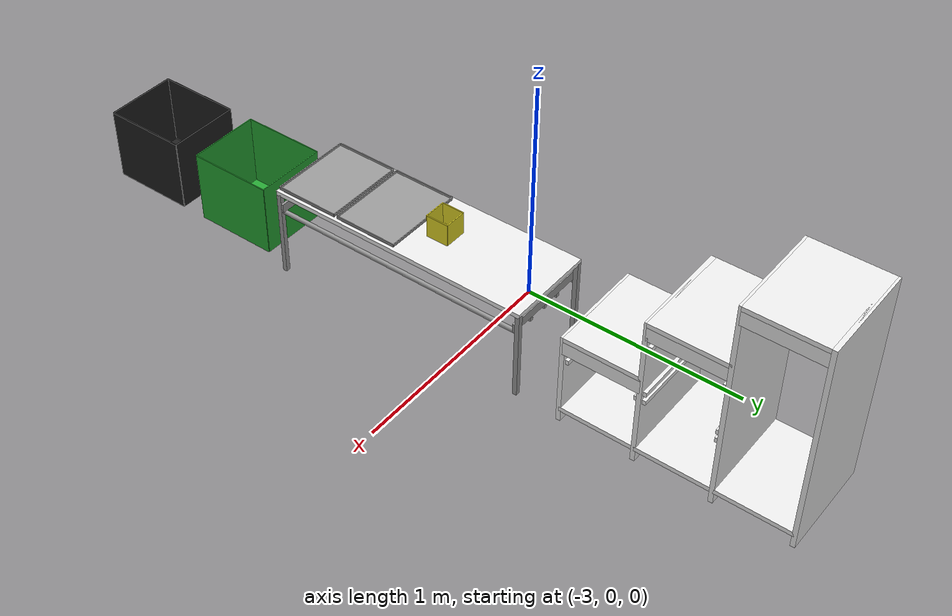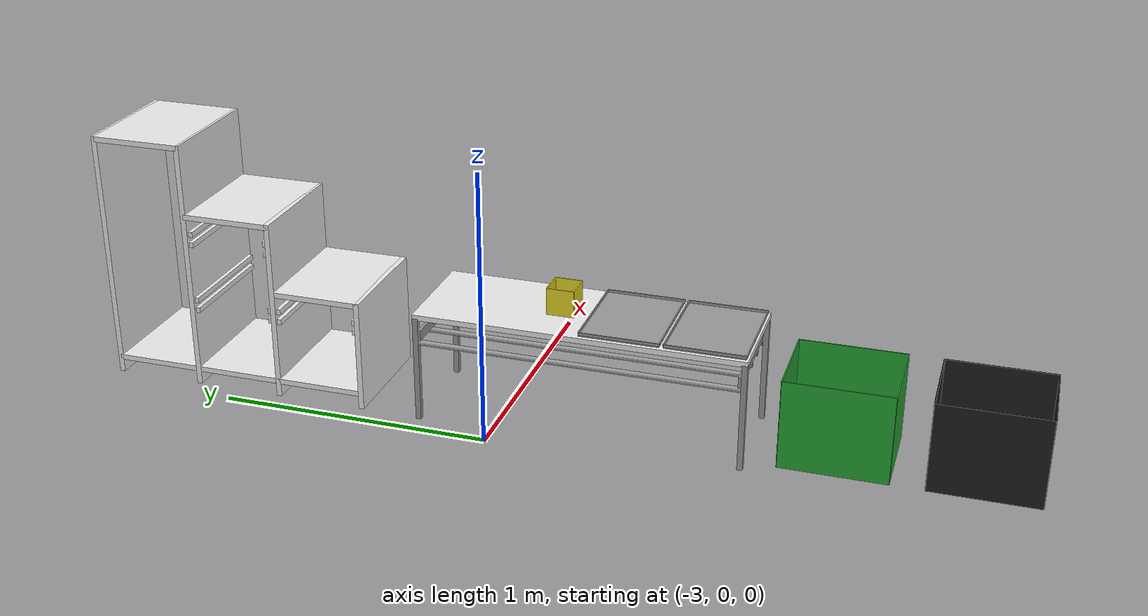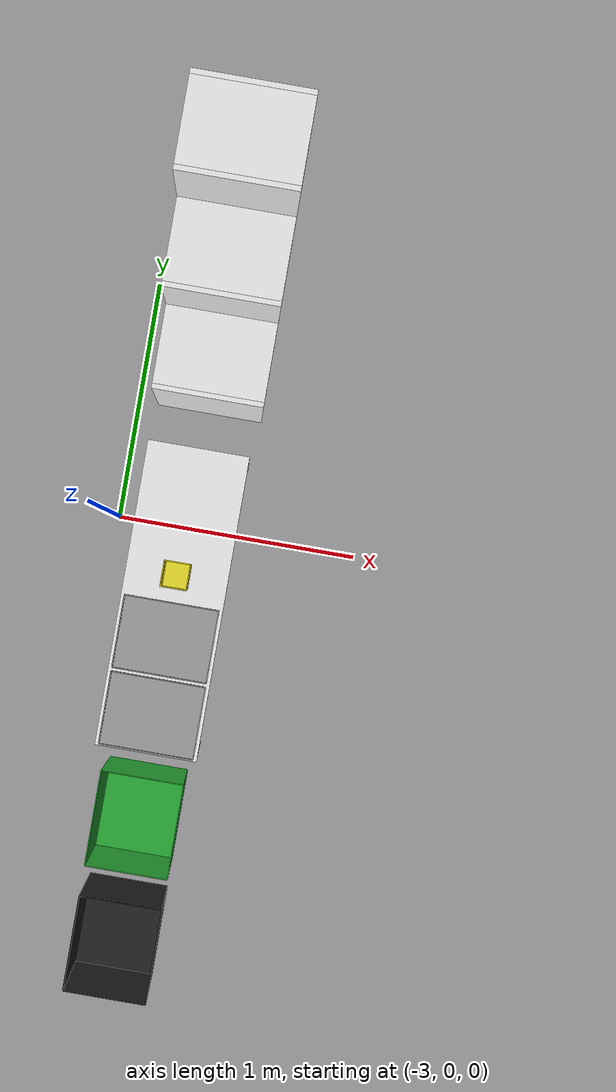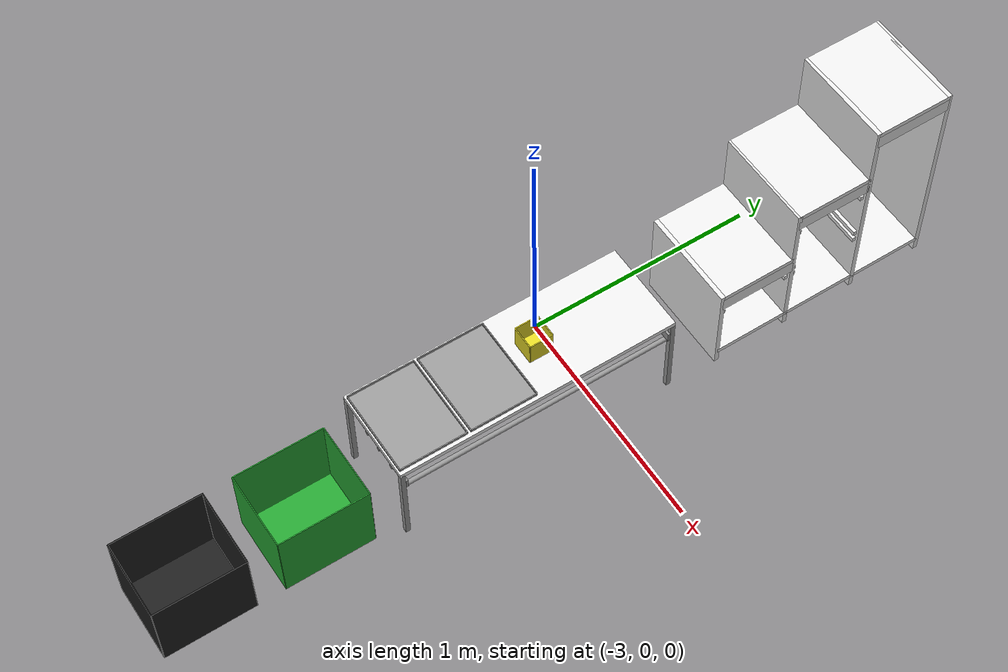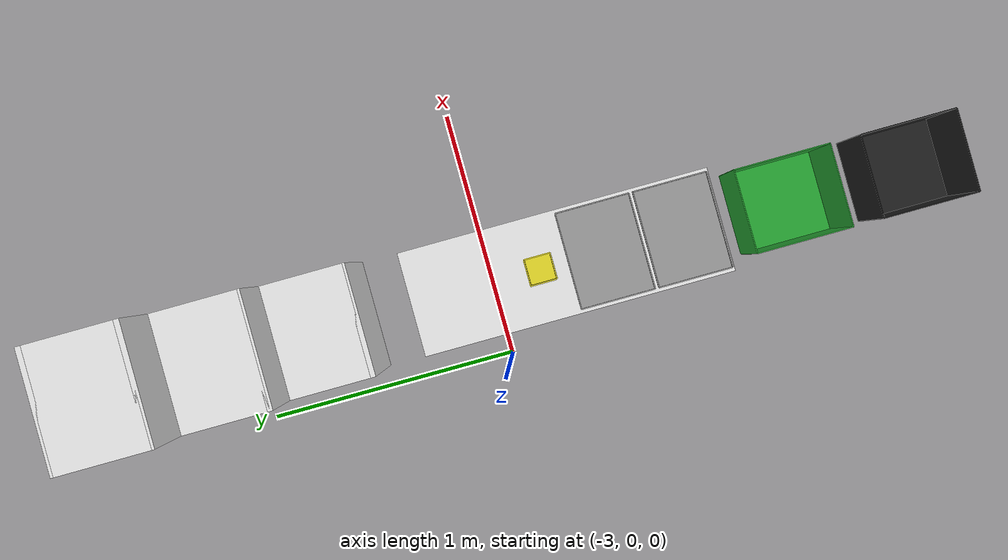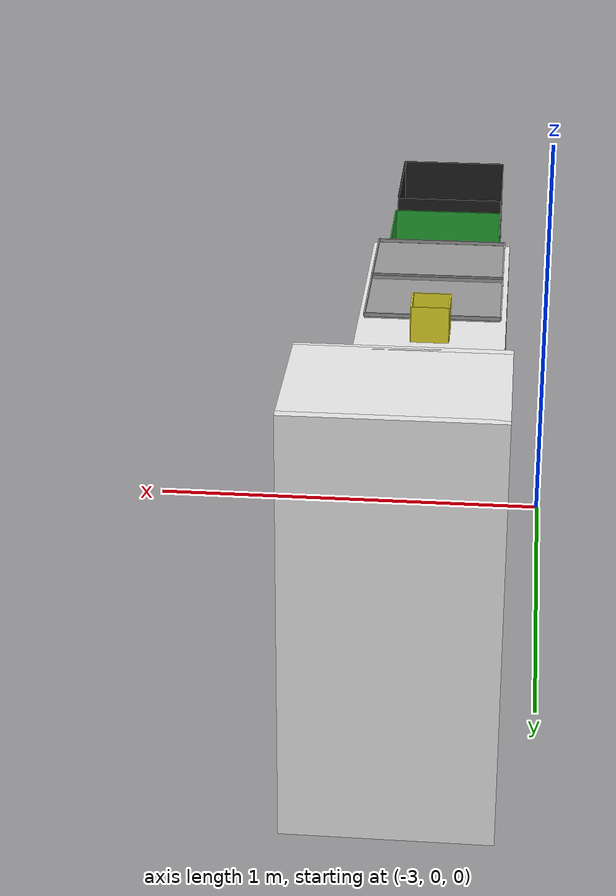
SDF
<sdf version="1.6">
 <world name="default">
  <model name="wrc_bin_black">
   <static>1</static>
   <link name="link">
    <inertial><mass>1</mass></inertial>
    <collision name="bottom">
     <pose>0 0 0.002 0 -0 0</pose>
     <geometry><box><size>0.33 0.38 0.004</size></box></geometry>
    </collision>
    <visual name="bottom_v">
     <pose>0 0 0.002 0 -0 0</pose>
     <geometry><box><size>0.33 0.38 0.004</size></box></geometry>
     <material>
      <script><uri>file://media/materials/scripts/gazebo.material</uri><name>Gazebo/Black</name></script>
     </material>
    </visual>
    <collision name="front">
     <pose>0 0.19 0.165 0 -0 0</pose>
     <geometry><box><size>0.33 0.004 0.33</size></box></geometry>
    </collision>
    <visual name="front_v">
     <pose>0 0.19 0.165 0 -0 0</pose>
     <geometry><box><size>0.33 0.004 0.33</size></box></geometry>
     <material>
      <script><uri>file://media/materials/scripts/gazebo.material</uri><name>Gazebo/Black</name></script>
     </material>
    </visual>
    <collision name="back">
     <pose>0 -0.19 0.165 0 -0 0</pose>
     <geometry><box><size>0.33 0.004 0.33</size></box></geometry>
    </collision>
    <visual name="back_v">
     <pose>0 -0.19 0.165 0 -0 0</pose>
     <geometry><box><size>0.33 0.004 0.33</size></box></geometry>
     <material>
      <script><uri>file://media/materials/scripts/gazebo.material</uri><name>Gazebo/Black</name></script>
     </material>
    </visual>
    <collision name="left">
     <pose>0.165 0 0.165 0 -0 0</pose>
     <geometry><box><size>0.004 0.38 0.33</size></box></geometry>
    </collision>
    <visual name="left_v">
     <pose>0.165 0 0.165 0 -0 0</pose>
     <geometry><box><size>0.004 0.38 0.33</size></box></geometry>
     <material>
      <script><uri>file://media/materials/scripts/gazebo.material</uri><name>Gazebo/Black</name></script>
     </material>
    </visual>
    <collision name="right">
     <pose>-0.165 0 0.165 0 -0 0</pose>
     <geometry><box><size>0.004 0.38 0.33</size></box></geometry>
    </collision>
    <visual name="right_v">
     <pose>-0.165 0 0.165 0 -0 0</pose>
     <geometry><box><size>0.004 0.38 0.33</size></box></geometry>
     <material>
      <script><uri>file://media/materials/scripts/gazebo.material</uri><name>Gazebo/Black</name></script>
     </material>
    </visual>
   </link>
   <pose>-2.7 -1.7 0 0 -0 0</pose>
  </model>
  <model name="wrc_bin_green">
   <static>1</static>
   <link name="link">
    <inertial><mass>1</mass></inertial>
    <collision name="bottom">
     <pose>0 0 0.002 0 -0 0</pose>
     <geometry><box><size>0.33 0.38 0.004</size></box></geometry>
    </collision>
    <visual name="bottom_v">
     <pose>0 0 0.002 0 -0 0</pose>
     <geometry><box><size>0.33 0.38 0.004</size></box></geometry>
     <material>
      <script><uri>file://media/materials/scripts/gazebo.material</uri><name>Gazebo/Green</name></script>
     </material>
    </visual>
    <collision name="front">
     <pose>0 0.19 0.165 0 -0 0</pose>
     <geometry><box><size>0.33 0.004 0.33</size></box></geometry>
    </collision>
    <visual name="front_v">
     <pose>0 0.19 0.165 0 -0 0</pose>
     <geometry><box><size>0.33 0.004 0.33</size></box></geometry>
     <material>
      <script><uri>file://media/materials/scripts/gazebo.material</uri><name>Gazebo/Green</name></script>
     </material>
    </visual>
    <collision name="back">
     <pose>0 -0.19 0.165 0 -0 0</pose>
     <geometry><box><size>0.33 0.004 0.33</size></box></geometry>
    </collision>
    <visual name="back_v">
     <pose>0 -0.19 0.165 0 -0 0</pose>
     <geometry><box><size>0.33 0.004 0.33</size></box></geometry>
     <material>
      <script><uri>file://media/materials/scripts/gazebo.material</uri><name>Gazebo/Green</name></script>
     </material>
    </visual>
    <collision name="left">
     <pose>0.165 0 0.165 0 -0 0</pose>
     <geometry><box><size>0.004 0.38 0.33</size></box></geometry>
    </collision>
    <visual name="left_v">
     <pose>0.165 0 0.165 0 -0 0</pose>
     <geometry><box><size>0.004 0.38 0.33</size></box></geometry>
     <material>
      <script><uri>file://media/materials/scripts/gazebo.material</uri><name>Gazebo/Green</name></script>
     </material>
    </visual>
    <collision name="right">
     <pose>-0.165 0 0.165 0 -0 0</pose>
     <geometry><box><size>0.004 0.38 0.33</size></box></geometry>
    </collision>
    <visual name="right_v">
     <pose>-0.165 0 0.165 0 -0 0</pose>
     <geometry><box><size>0.004 0.38 0.33</size></box></geometry>
     <material>
      <script><uri>file://media/materials/scripts/gazebo.material</uri><name>Gazebo/Green</name></script>
     </material>
    </visual>
   </link>
   <pose>-2.7 -1.2 0 0 -0 0</pose>
  </model>
  <model name="wrc_stair_like_drawer">
   <static>1</static>
   <link name="link">
    <inertial><mass>1</mass></inertial>
    <collision name="slit1">
     <pose>0 -0.495 0.21 0 -0 0</pose>
     <geometry><box><size>0.44 0.02 0.42</size></box></geometry>
    </collision>
    <visual name="slit1_v">
     <pose>0 -0.495 0.21 0 -0 0</pose>
     <geometry><box><size>0.44 0.02 0.42</size></box></geometry>
     <material>
      <script><uri>file://media/materials/scripts/gazebo.material</uri><name>Gazebo/White</name></script>
     </material>
    </visual>
    <collision name="holder_slit1_1_left_low">
     <pose>0 -0.48 0.3 0 -0 0</pose>
     <geometry><box><size>0.42 0.02 0.02</size></box></geometry>
    </collision>
    <visual name="holder_slit1_1_left_low_v">
     <pose>0 -0.48 0.3 0 -0 0</pose>
     <geometry><box><size>0.42 0.02 0.02</size></box></geometry>
     <material>
      <script><uri>file://media/materials/scripts/gazebo.material</uri><name>Gazebo/White</name></script>
     </material>
    </visual>
    <collision name="holder_slit1_1_left_high">
     <pose>0 -0.48 0.34 0 -0 0</pose>
     <geometry><box><size>0.42 0.02 0.02</size></box></geometry>
    </collision>
    <visual name="holder_slit1_1_left_high_v">
     <pose>0 -0.48 0.34 0 -0 0</pose>
     <geometry><box><size>0.42 0.02 0.02</size></box></geometry>
     <material>
      <script><uri>file://media/materials/scripts/gazebo.material</uri><name>Gazebo/White</name></script>
     </material>
    </visual>
    <collision name="holder_slit1_1_right_low">
     <pose>0 -0.18 0.3 0 -0 0</pose>
     <geometry><box><size>0.42 0.02 0.02</size></box></geometry>
    </collision>
    <visual name="holder_slit1_1_right_low_v">
     <pose>0 -0.18 0.3 0 -0 0</pose>
     <geometry><box><size>0.42 0.02 0.02</size></box></geometry>
     <material>
      <script><uri>file://media/materials/scripts/gazebo.material</uri><name>Gazebo/White</name></script>
     </material>
    </visual>
    <collision name="holder_slit1_1_right_high">
     <pose>0 -0.18 0.34 0 -0 0</pose>
     <geometry><box><size>0.42 0.02 0.02</size></box></geometry>
    </collision>
    <visual name="holder_slit1_1_right_high_v">
     <pose>0 -0.18 0.34 0 -0 0</pose>
     <geometry><box><size>0.42 0.02 0.02</size></box></geometry>
     <material>
      <script><uri>file://media/materials/scripts/gazebo.material</uri><name>Gazebo/White</name></script>
     </material>
    </visual>
    <collision name="slit2">
     <pose>0 -0.165 0.34 0 -0 0</pose>
     <geometry><box><size>0.44 0.02 0.68</size></box></geometry>
    </collision>
    <visual name="slit2_v">
     <pose>0 -0.165 0.34 0 -0 0</pose>
     <geometry><box><size>0.44 0.02 0.68</size></box></geometry>
     <material>
      <script><uri>file://media/materials/scripts/gazebo.material</uri><name>Gazebo/White</name></script>
     </material>
    </visual>
    <collision name="holder_slit2_1_left_low">
     <pose>0 -0.15 0.3 0 -0 0</pose>
     <geometry><box><size>0.42 0.02 0.02</size></box></geometry>
    </collision>
    <visual name="holder_slit2_1_left_low_v">
     <pose>0 -0.15 0.3 0 -0 0</pose>
     <geometry><box><size>0.42 0.02 0.02</size></box></geometry>
     <material>
      <script><uri>file://media/materials/scripts/gazebo.material</uri><name>Gazebo/White</name></script>
     </material>
    </visual>
    <collision name="holder_slit2_1_left_high">
     <pose>0 -0.15 0.34 0 -0 0</pose>
     <geometry><box><size>0.42 0.02 0.02</size></box></geometry>
    </collision>
    <visual name="holder_slit2_1_left_high_v">
     <pose>0 -0.15 0.34 0 -0 0</pose>
     <geometry><box><size>0.42 0.02 0.02</size></box></geometry>
     <material>
      <script><uri>file://media/materials/scripts/gazebo.material</uri><name>Gazebo/White</name></script>
     </material>
    </visual>
    <collision name="holder_slit2_1_right_low">
     <pose>0 0.15 0.3 0 -0 0</pose>
     <geometry><box><size>0.42 0.02 0.02</size></box></geometry>
    </collision>
    <visual name="holder_slit2_1_right_low_v">
     <pose>0 0.15 0.3 0 -0 0</pose>
     <geometry><box><size>0.42 0.02 0.02</size></box></geometry>
     <material>
      <script><uri>file://media/materials/scripts/gazebo.material</uri><name>Gazebo/White</name></script>
     </material>
    </visual>
    <collision name="holder_slit2_1_right_high">
     <pose>0 0.15 0.34 0 -0 0</pose>
     <geometry><box><size>0.42 0.02 0.02</size></box></geometry>
    </collision>
    <visual name="holder_slit2_1_right_high_v">
     <pose>0 0.15 0.34 0 -0 0</pose>
     <geometry><box><size>0.42 0.02 0.02</size></box></geometry>
     <material>
      <script><uri>file://media/materials/scripts/gazebo.material</uri><name>Gazebo/White</name></script>
     </material>
    </visual>
    <collision name="holder_slit2_2_left_low">
     <pose>0 -0.15 0.56 0 -0 0</pose>
     <geometry><box><size>0.42 0.02 0.02</size></box></geometry>
    </collision>
    <visual name="holder_slit2_2_left_low_v">
     <pose>0 -0.15 0.56 0 -0 0</pose>
     <geometry><box><size>0.42 0.02 0.02</size></box></geometry>
     <material>
      <script><uri>file://media/materials/scripts/gazebo.material</uri><name>Gazebo/White</name></script>
     </material>
    </visual>
    <collision name="holder_slit2_2_left_high">
     <pose>0 -0.15 0.6 0 -0 0</pose>
     <geometry><box><size>0.42 0.02 0.02</size></box></geometry>
    </collision>
    <visual name="holder_slit2_2_left_high_v">
     <pose>0 -0.15 0.6 0 -0 0</pose>
     <geometry><box><size>0.42 0.02 0.02</size></box></geometry>
     <material>
      <script><uri>file://media/materials/scripts/gazebo.material</uri><name>Gazebo/White</name></script>
     </material>
    </visual>
    <collision name="holder_slit2_2_right_low">
     <pose>0 0.15 0.56 0 -0 0</pose>
     <geometry><box><size>0.42 0.02 0.02</size></box></geometry>
    </collision>
    <visual name="holder_slit2_2_right_low_v">
     <pose>0 0.15 0.56 0 -0 0</pose>
     <geometry><box><size>0.42 0.02 0.02</size></box></geometry>
     <material>
      <script><uri>file://media/materials/scripts/gazebo.material</uri><name>Gazebo/White</name></script>
     </material>
    </visual>
    <collision name="holder_slit2_2_right_high">
     <pose>0 0.15 0.6 0 -0 0</pose>
     <geometry><box><size>0.42 0.02 0.02</size></box></geometry>
    </collision>
    <visual name="holder_slit2_2_right_high_v">
     <pose>0 0.15 0.6 0 -0 0</pose>
     <geometry><box><size>0.42 0.02 0.02</size></box></geometry>
     <material>
      <script><uri>file://media/materials/scripts/gazebo.material</uri><name>Gazebo/White</name></script>
     </material>
    </visual>
    <collision name="slit3">
     <pose>0 0.165 0.47 0 -0 0</pose>
     <geometry><box><size>0.44 0.02 0.94</size></box></geometry>
    </collision>
    <visual name="slit3_v">
     <pose>0 0.165 0.47 0 -0 0</pose>
     <geometry><box><size>0.44 0.02 0.94</size></box></geometry>
     <material>
      <script><uri>file://media/materials/scripts/gazebo.material</uri><name>Gazebo/White</name></script>
     </material>
    </visual>
    <collision name="slit4">
     <pose>0 0.495 0.47 0 -0 0</pose>
     <geometry><box><size>0.44 0.02 0.94</size></box></geometry>
    </collision>
    <visual name="slit4_v">
     <pose>0 0.495 0.47 0 -0 0</pose>
     <geometry><box><size>0.44 0.02 0.94</size></box></geometry>
     <material>
      <script><uri>file://media/materials/scripts/gazebo.material</uri><name>Gazebo/White</name></script>
     </material>
    </visual>
    <collision name="top1">
     <pose>0 -0.33 0.41 0 -0 0</pose>
     <geometry><box><size>0.44 0.33 0.02</size></box></geometry>
    </collision>
    <visual name="top1_v">
     <pose>0 -0.33 0.41 0 -0 0</pose>
     <geometry><box><size>0.44 0.33 0.02</size></box></geometry>
     <material>
      <script><uri>file://media/materials/scripts/gazebo.material</uri><name>Gazebo/White</name></script>
     </material>
    </visual>
    <collision name="top1_front">
     <pose>0.21 -0.33 0.37 0 -0 0</pose>
     <geometry><box><size>0.02 0.33 0.06</size></box></geometry>
    </collision>
    <visual name="top1_front_v">
     <pose>0.21 -0.33 0.37 0 -0 0</pose>
     <geometry><box><size>0.02 0.33 0.06</size></box></geometry>
     <material>
      <script><uri>file://media/materials/scripts/gazebo.material</uri><name>Gazebo/White</name></script>
     </material>
    </visual>
    <collision name="top2">
     <pose>0 0 0.67 0 -0 0</pose>
     <geometry><box><size>0.44 0.33 0.02</size></box></geometry>
    </collision>
    <visual name="top2_v">
     <pose>0 0 0.67 0 -0 0</pose>
     <geometry><box><size>0.44 0.33 0.02</size></box></geometry>
     <material>
      <script><uri>file://media/materials/scripts/gazebo.material</uri><name>Gazebo/White</name></script>
     </material>
    </visual>
    <collision name="top2_front">
     <pose>0.21 0 0.63 0 -0 0</pose>
     <geometry><box><size>0.02 0.33 0.06</size></box></geometry>
    </collision>
    <visual name="top2_front_v">
     <pose>0.21 0 0.63 0 -0 0</pose>
     <geometry><box><size>0.02 0.33 0.06</size></box></geometry>
     <material>
      <script><uri>file://media/materials/scripts/gazebo.material</uri><name>Gazebo/White</name></script>
     </material>
    </visual>
    <collision name="top3">
     <pose>0 0.33 0.93 0 -0 0</pose>
     <geometry><box><size>0.44 0.33 0.02</size></box></geometry>
    </collision>
    <visual name="top3_v">
     <pose>0 0.33 0.93 0 -0 0</pose>
     <geometry><box><size>0.44 0.33 0.02</size></box></geometry>
     <material>
      <script><uri>file://media/materials/scripts/gazebo.material</uri><name>Gazebo/White</name></script>
     </material>
    </visual>
    <collision name="top3_front">
     <pose>0.21 0.33 0.89 0 -0 0</pose>
     <geometry><box><size>0.02 0.33 0.06</size></box></geometry>
    </collision>
    <visual name="top3_front_v">
     <pose>0.21 0.33 0.89 0 -0 0</pose>
     <geometry><box><size>0.02 0.33 0.06</size></box></geometry>
     <material>
      <script><uri>file://media/materials/scripts/gazebo.material</uri><name>Gazebo/White</name></script>
     </material>
    </visual>
    <collision name="bottom">
     <pose>0 0 0.06 0 -0 0</pose>
     <geometry><box><size>0.44 0.99 0.02</size></box></geometry>
    </collision>
    <visual name="bottom_v">
     <pose>0 0 0.06 0 -0 0</pose>
     <geometry><box><size>0.44 0.99 0.02</size></box></geometry>
     <material>
      <script><uri>file://media/materials/scripts/gazebo.material</uri><name>Gazebo/White</name></script>
     </material>
    </visual>
   </link>
   <pose>-2.7 1 0 0 -0 0</pose>
  </model>
  <model name="wrc_long_table_0">
   <static>1</static>
   <link name="link">
    <inertial><mass>1</mass></inertial>
    <collision name="top">
     <pose>0 0 0.39 0 -0 0</pose>
     <geometry><box><size>1.2 0.4 0.02</size></box></geometry>
    </collision>
    <visual name="top_v">
     <pose>0 0 0.39 0 -0 0</pose>
     <geometry><box><size>1.2 0.4 0.02</size></box></geometry>
     <material>
      <script><uri>file://media/materials/scripts/gazebo.material</uri><name>Gazebo/White</name></script>
     </material>
    </visual>
    <collision name="leg1">
     <pose>0.59 0.19 0.185 0 -0 0</pose>
     <geometry><box><size>0.02 0.02 0.4</size></box></geometry>
    </collision>
    <visual name="leg1_v">
     <pose>0.59 0.19 0.185 0 -0 0</pose>
     <geometry><box><size>0.02 0.02 0.4</size></box></geometry>
     <material>
      <script><uri>file://media/materials/scripts/gazebo.material</uri><name>Gazebo/Gray</name></script>
     </material>
    </visual>
    <collision name="leg2">
     <pose>-0.59 0.19 0.185 0 -0 0</pose>
     <geometry><box><size>0.02 0.02 0.4</size></box></geometry>
    </collision>
    <visual name="leg2_v">
     <pose>-0.59 0.19 0.185 0 -0 0</pose>
     <geometry><box><size>0.02 0.02 0.4</size></box></geometry>
     <material>
      <script><uri>file://media/materials/scripts/gazebo.material</uri><name>Gazebo/Gray</name></script>
     </material>
    </visual>
    <collision name="leg3">
     <pose>0.59 -0.19 0.185 0 -0 0</pose>
     <geometry><box><size>0.02 0.02 0.4</size></box></geometry>
    </collision>
    <visual name="leg3_v">
     <pose>0.59 -0.19 0.185 0 -0 0</pose>
     <geometry><box><size>0.02 0.02 0.4</size></box></geometry>
     <material>
      <script><uri>file://media/materials/scripts/gazebo.material</uri><name>Gazebo/Gray</name></script>
     </material>
    </visual>
    <collision name="leg4">
     <pose>-0.59 -0.19 0.185 0 -0 0</pose>
     <geometry><box><size>0.02 0.02 0.4</size></box></geometry>
    </collision>
    <visual name="leg4_v">
     <pose>-0.59 -0.19 0.185 0 -0 0</pose>
     <geometry><box><size>0.02 0.02 0.4</size></box></geometry>
     <material>
      <script><uri>file://media/materials/scripts/gazebo.material</uri><name>Gazebo/Gray</name></script>
     </material>
    </visual>
    <collision name="side_panel1">
     <pose>0.575 0 0.32 0 -0 0</pose>
     <geometry><box><size>0.01 0.4 0.04</size></box></geometry>
    </collision>
    <visual name="side_panel1_v">
     <pose>0.575 0 0.32 0 -0 0</pose>
     <geometry><box><size>0.01 0.4 0.04</size></box></geometry>
     <material>
      <script><uri>file://media/materials/scripts/gazebo.material</uri><name>Gazebo/Gray</name></script>
     </material>
    </visual>
    <collision name="side_panel2">
     <pose>-0.575 0 0.32 0 -0 0</pose>
     <geometry><box><size>0.01 0.4 0.04</size></box></geometry>
    </collision>
    <visual name="side_panel2_v">
     <pose>-0.575 0 0.32 0 -0 0</pose>
     <geometry><box><size>0.01 0.4 0.04</size></box></geometry>
     <material>
      <script><uri>file://media/materials/scripts/gazebo.material</uri><name>Gazebo/Gray</name></script>
     </material>
    </visual>
    <collision name="bar1">
     <pose>0 0.2 0.29 0 1.57 0</pose>
     <geometry><cylinder><radius>0.01</radius><length>1.16</length></cylinder></geometry>
    </collision>
    <visual name="bar1_v">
     <pose>0 0.19 0.29 0 1.57 0</pose>
     <geometry><cylinder><radius>0.01</radius><length>1.16</length></cylinder></geometry>
     <material>
      <script><uri>file://media/materials/scripts/gazebo.material</uri><name>Gazebo/Gray</name></script>
     </material>
    </visual>
    <collision name="bar2">
     <pose>0 0.08 0.29 0 1.57 0</pose>
     <geometry><cylinder><radius>0.01</radius><length>1.16</length></cylinder></geometry>
    </collision>
    <visual name="bar2_v">
     <pose>0 0.08 0.29 0 1.57 0</pose>
     <geometry><cylinder><radius>0.01</radius><length>1.16</length></cylinder></geometry>
     <material>
      <script><uri>file://media/materials/scripts/gazebo.material</uri><name>Gazebo/Gray</name></script>
     </material>
    </visual>
    <collision name="bar3">
     <pose>0 0 0.29 0 1.57 0</pose>
     <geometry><cylinder><radius>0.01</radius><length>1.16</length></cylinder></geometry>
    </collision>
    <visual name="bar3_v">
     <pose>0 0 0.29 0 1.57 0</pose>
     <geometry><cylinder><radius>0.01</radius><length>1.16</length></cylinder></geometry>
     <material>
      <script><uri>file://media/materials/scripts/gazebo.material</uri><name>Gazebo/Gray</name></script>
     </material>
    </visual>
    <collision name="bar4">
     <pose>0 -0.08 0.29 0 1.57 0</pose>
     <geometry><cylinder><radius>0.01</radius><length>1.16</length></cylinder></geometry>
    </collision>
    <visual name="bar4_v">
     <pose>0 -0.09 0.29 0 1.57 0</pose>
     <geometry><cylinder><radius>0.01</radius><length>1.16</length></cylinder></geometry>
     <material>
      <script><uri>file://media/materials/scripts/gazebo.material</uri><name>Gazebo/Gray</name></script>
     </material>
    </visual>
    <collision name="bar5">
     <pose>0 -0.18 0.29 0 1.57 0</pose>
     <geometry><cylinder><radius>0.01</radius><length>1.16</length></cylinder></geometry>
    </collision>
    <visual name="bar5_v">
     <pose>0 -0.18 0.29 0 1.57 0</pose>
     <geometry><cylinder><radius>0.01</radius><length>1.16</length></cylinder></geometry>
     <material>
      <script><uri>file://media/materials/scripts/gazebo.material</uri><name>Gazebo/Gray</name></script>
     </material>
    </visual>
   </link>
   <pose>-2.7 -0.3 0 0 -0 1.57</pose>
  </model>
  <model name="wrc_tray_1">
   <static>1</static>
   <link name="link">
    <inertial><mass>1</mass></inertial>
    <collision name="bottom">
     <pose>0 0 0.002 0 -0 0</pose>
     <geometry><box><size>0.36 0.38 0.004</size></box></geometry>
    </collision>
    <visual name="bottom_v">
     <pose>0 0 0.002 0 -0 0</pose>
     <geometry><box><size>0.285 0.37 0.004</size></box></geometry>
     <material>
      <script><uri>file://media/materials/scripts/gazebo.material</uri><name>Gazebo/Gray</name></script>
     </material>
    </visual>
    <collision name="front">
     <pose>0 0.185 0.01 0 -0 0</pose>
     <geometry><box><size>0.285 0.004 0.01</size></box></geometry>
    </collision>
    <visual name="front_v">
     <pose>0 0.185 0.01 0 -0 0</pose>
     <geometry><box><size>0.285 0.004 0.01</size></box></geometry>
     <material>
      <script><uri>file://media/materials/scripts/gazebo.material</uri><name>Gazebo/Gray</name></script>
     </material>
    </visual>
    <collision name="back">
     <pose>0 -0.185 0.01 0 -0 0</pose>
     <geometry><box><size>0.285 0.004 0.01</size></box></geometry>
    </collision>
    <visual name="back_v">
     <pose>0 -0.185 0.01 0 -0 0</pose>
     <geometry><box><size>0.285 0.004 0.01</size></box></geometry>
     <material>
      <script><uri>file://media/materials/scripts/gazebo.material</uri><name>Gazebo/Gray</name></script>
     </material>
    </visual>
    <collision name="left">
     <pose>0.1425 0 0.01 0 -0 0</pose>
     <geometry><box><size>0.004 0.37 0.01</size></box></geometry>
    </collision>
    <visual name="left_v">
     <pose>0.1425 0 0.01 0 -0 0</pose>
     <geometry><box><size>0.004 0.37 0.01</size></box></geometry>
     <material>
      <script><uri>file://media/materials/scripts/gazebo.material</uri><name>Gazebo/Gray</name></script>
     </material>
    </visual>
    <collision name="right">
     <pose>-0.1425 0 0.01 0 -0 0</pose>
     <geometry><box><size>0.004 0.37 0.01</size></box></geometry>
    </collision>
    <visual name="right_v">
     <pose>-0.1425 0 0.01 0 -0 0</pose>
     <geometry><box><size>0.004 0.37 0.01</size></box></geometry>
     <material>
      <script><uri>file://media/materials/scripts/gazebo.material</uri><name>Gazebo/Gray</name></script>
     </material>
    </visual>
   </link>
   <pose>-2.7 -0.75 0.4 0 -0 1.57</pose>
  </model>
  <model name="wrc_tray_2">
   <static>1</static>
   <link name="link">
    <inertial><mass>1</mass></inertial>
    <collision name="bottom">
     <pose>0 0 0.002 0 -0 0</pose>
     <geometry><box><size>0.36 0.38 0.004</size></box></geometry>
    </collision>
    <visual name="bottom_v">
     <pose>0 0 0.002 0 -0 0</pose>
     <geometry><box><size>0.285 0.37 0.004</size></box></geometry>
     <material>
      <script><uri>file://media/materials/scripts/gazebo.material</uri><name>Gazebo/Gray</name></script>
     </material>
    </visual>
    <collision name="front">
     <pose>0 0.185 0.01 0 -0 0</pose>
     <geometry><box><size>0.285 0.004 0.01</size></box></geometry>
    </collision>
    <visual name="front_v">
     <pose>0 0.185 0.01 0 -0 0</pose>
     <geometry><box><size>0.285 0.004 0.01</size></box></geometry>
     <material>
      <script><uri>file://media/materials/scripts/gazebo.material</uri><name>Gazebo/Gray</name></script>
     </material>
    </visual>
    <collision name="back">
     <pose>0 -0.185 0.01 0 -0 0</pose>
     <geometry><box><size>0.285 0.004 0.01</size></box></geometry>
    </collision>
    <visual name="back_v">
     <pose>0 -0.185 0.01 0 -0 0</pose>
     <geometry><box><size>0.285 0.004 0.01</size></box></geometry>
     <material>
      <script><uri>file://media/materials/scripts/gazebo.material</uri><name>Gazebo/Gray</name></script>
     </material>
    </visual>
    <collision name="left">
     <pose>0.1425 0 0.01 0 -0 0</pose>
     <geometry><box><size>0.004 0.37 0.01</size></box></geometry>
    </collision>
    <visual name="left_v">
     <pose>0.1425 0 0.01 0 -0 0</pose>
     <geometry><box><size>0.004 0.37 0.01</size></box></geometry>
     <material>
      <script><uri>file://media/materials/scripts/gazebo.material</uri><name>Gazebo/Gray</name></script>
     </material>
    </visual>
    <collision name="right">
     <pose>-0.1425 0 0.01 0 -0 0</pose>
     <geometry><box><size>0.004 0.37 0.01</size></box></geometry>
    </collision>
    <visual name="right_v">
     <pose>-0.1425 0 0.01 0 -0 0</pose>
     <geometry><box><size>0.004 0.37 0.01</size></box></geometry>
     <material>
      <script><uri>file://media/materials/scripts/gazebo.material</uri><name>Gazebo/Gray</name></script>
     </material>
    </visual>
   </link>
   <pose>-2.7 -0.45 0.4 0 -0 1.57</pose>
  </model>
  <model name="wrc_container_a">
   <static>1</static>
   <link name="link">
    <inertial><mass>1</mass></inertial>
    <collision name="bottom">
     <pose>0 0 0.002 0 -0 0</pose>
     <geometry><box><size>0.1 0.1 0.004</size></box></geometry>
    </collision>
    <visual name="bottom_v">
     <pose>0 0 0.002 0 -0 0</pose>
     <geometry><box><size>0.1 0.1 0.004</size></box></geometry>
     <material>
      <script><uri>file://media/materials/scripts/gazebo.material</uri><name>Gazebo/Yellow</name></script>
     </material>
    </visual>
    <collision name="front">
     <pose>0 0.05 0.05 0 -0 0</pose>
     <geometry><box><size>0.1 0.004 0.1</size></box></geometry>
    </collision>
    <visual name="front_v">
     <pose>0 0.05 0.05 0 -0 0</pose>
     <geometry><box><size>0.1 0.004 0.1</size></box></geometry>
     <material>
      <script><uri>file://media/materials/scripts/gazebo.material</uri><name>Gazebo/Yellow</name></script>
     </material>
    </visual>
    <collision name="back">
     <pose>0 -0.05 0.05 0 -0 0</pose>
     <geometry><box><size>0.1 0.004 0.1</size></box></geometry>
    </collision>
    <visual name="back_v">
     <pose>0 -0.05 0.05 0 -0 0</pose>
     <geometry><box><size>0.1 0.004 0.1</size></box></geometry>
     <material>
      <script><uri>file://media/materials/scripts/gazebo.material</uri><name>Gazebo/Yellow</name></script>
     </material>
    </visual>
    <collision name="left">
     <pose>0.05 0 0.05 0 -0 0</pose>
     <geometry><box><size>0.004 0.1 0.1</size></box></geometry>
    </collision>
    <visual name="left_v">
     <pose>0.05 0 0.05 0 -0 0</pose>
     <geometry><box><size>0.004 0.1 0.1</size></box></geometry>
     <material>
      <script><uri>file://media/materials/scripts/gazebo.material</uri><name>Gazebo/Yellow</name></script>
     </material>
    </visual>
    <collision name="right">
     <pose>-0.05 0 0.05 0 -0 0</pose>
     <geometry><box><size>0.004 0.1 0.1</size></box></geometry>
    </collision>
    <visual name="right_v">
     <pose>-0.05 0 0.05 0 -0 0</pose>
     <geometry><box><size>0.004 0.1 0.1</size></box></geometry>
     <material>
      <script><uri>file://media/materials/scripts/gazebo.material</uri><name>Gazebo/Yellow</name></script>
     </material>
    </visual>
   </link>
   <pose>-2.7 -0.2 0.4 0 -0 0</pose>
  </model>
 </world>
</sdf>
